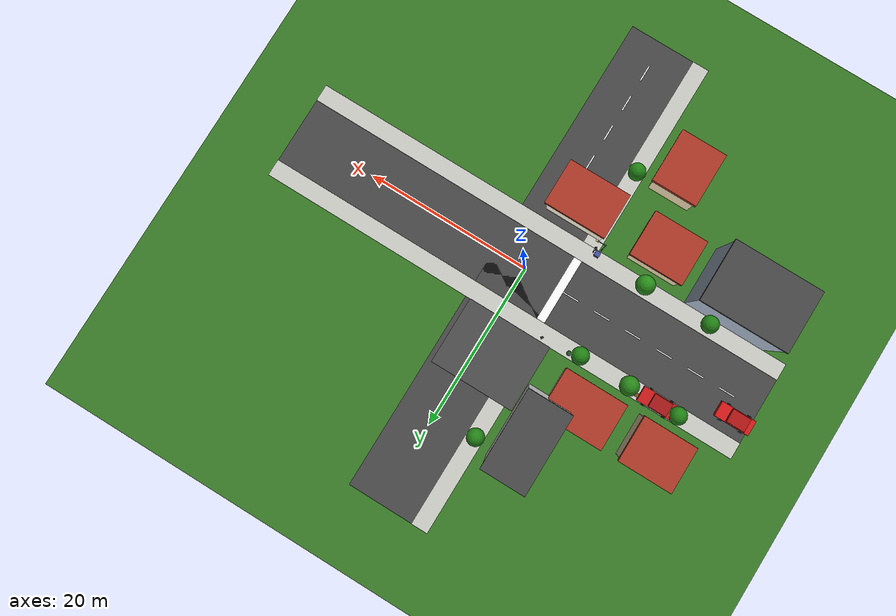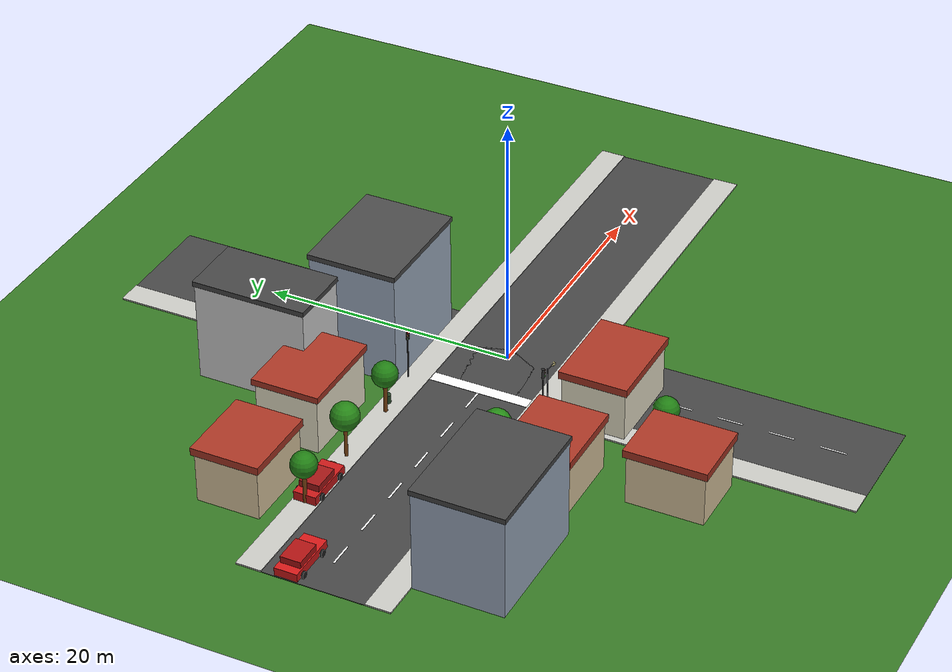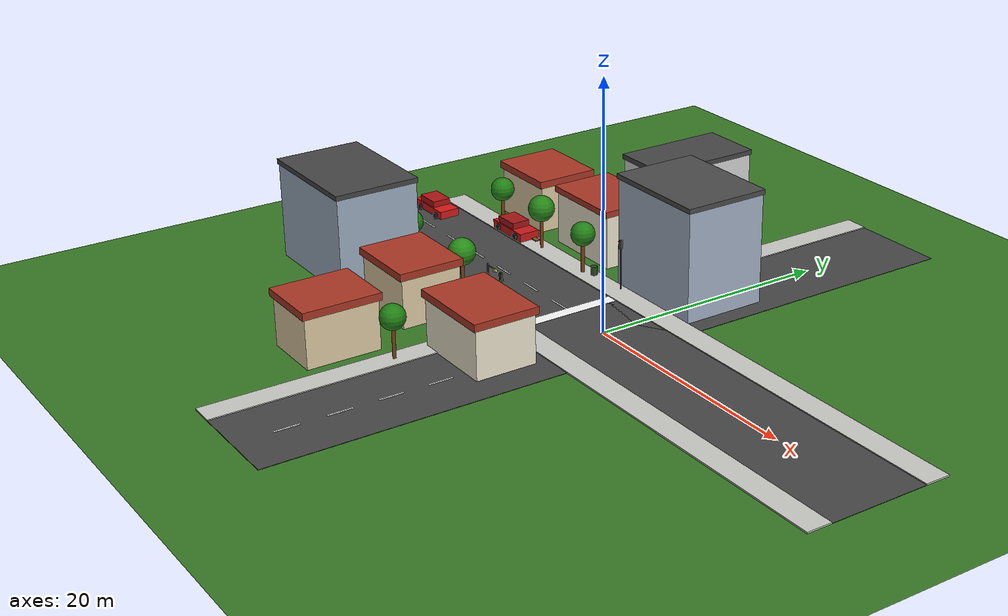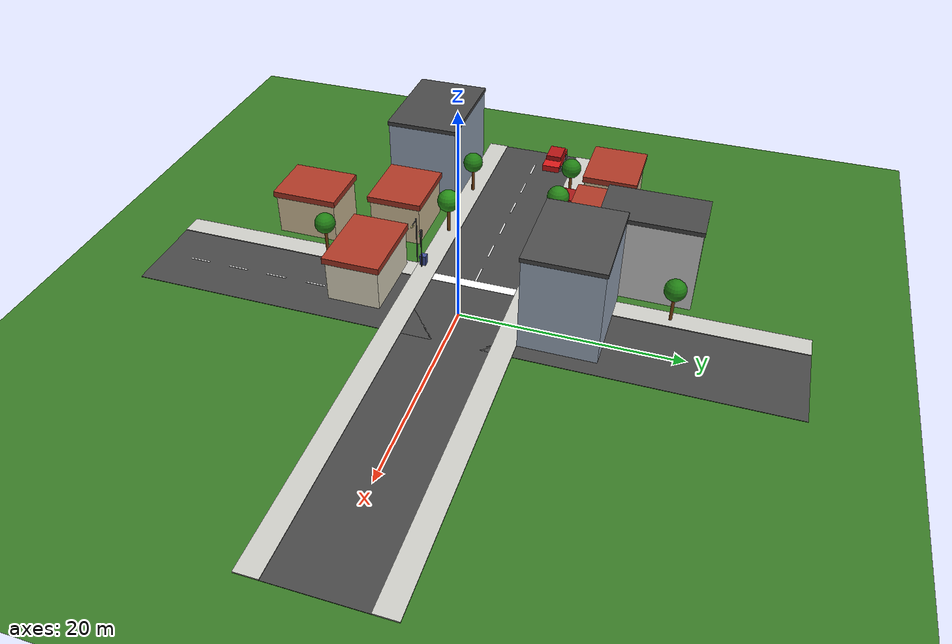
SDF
<sdf version="1.9">
 <world name="smartnav_world">
  <include><uri>https://fuel.gazebosim.org/1.0/OpenRobotics/models/Sun</uri></include>
  <model name="ground_grass">
   <static>true</static>
   <link name="link">
    <collision name="col">
     <geometry><plane><normal>0 0 1</normal><size>120 120</size></plane></geometry>
    </collision>
    <visual name="vis">
     <geometry><plane><normal>0 0 1</normal><size>120 120</size></plane></geometry>
     <material><ambient>0.18 0.40 0.12 1</ambient><diffuse>0.22 0.48 0.15 1</diffuse></material>
    </visual>
   </link>
  </model>
  <model name="road_main">
   <static>true</static>
   <pose>0 0 0.02 0 0 0</pose>
   <link name="link">
    <collision name="col"><geometry><box><size>60 8 0.04</size></box></geometry></collision>
    <visual name="vis">
     <geometry><box><size>60 8 0.04</size></box></geometry>
     <material><ambient>0.22 0.22 0.22 1</ambient><diffuse>0.28 0.28 0.28 1</diffuse></material>
    </visual>
   </link>
  </model>
  <model name="road_cross">
   <static>true</static>
   <pose>0 0 0.02 0 0 0</pose>
   <link name="link">
    <collision name="col"><geometry><box><size>8 60 0.04</size></box></geometry></collision>
    <visual name="vis">
     <geometry><box><size>8 60 0.04</size></box></geometry>
     <material><ambient>0.22 0.22 0.22 1</ambient><diffuse>0.28 0.28 0.28 1</diffuse></material>
    </visual>
   </link>
  </model>
  <model name="sidewalk_north">
   <static>true</static>
   <pose>0 5 0.06 0 0 0</pose>
   <link name="link">
    <collision name="col"><geometry><box><size>60 2 0.12</size></box></geometry></collision>
    <visual name="vis">
     <geometry><box><size>60 2 0.12</size></box></geometry>
     <material><ambient>0.73 0.73 0.71 1</ambient><diffuse>0.80 0.80 0.78 1</diffuse></material>
    </visual>
   </link>
  </model>
  <model name="sidewalk_south">
   <static>true</static>
   <pose>0 -5 0.06 0 0 0</pose>
   <link name="link">
    <collision name="col"><geometry><box><size>60 2 0.12</size></box></geometry></collision>
    <visual name="vis">
     <geometry><box><size>60 2 0.12</size></box></geometry>
     <material><ambient>0.73 0.73 0.71 1</ambient><diffuse>0.80 0.80 0.78 1</diffuse></material>
    </visual>
   </link>
  </model>
  <model name="sidewalk_west_S">
   <static>true</static>
   <pose>-5 -18 0.06 0 0 0</pose>
   <link name="link">
    <collision name="col"><geometry><box><size>2 24 0.12</size></box></geometry></collision>
    <visual name="vis">
     <geometry><box><size>2 24 0.12</size></box></geometry>
     <material><ambient>0.73 0.73 0.71 1</ambient><diffuse>0.80 0.80 0.78 1</diffuse></material>
    </visual>
   </link>
  </model>
  <model name="sidewalk_west_N">
   <static>true</static>
   <pose>-5 18 0.06 0 0 0</pose>
   <link name="link">
    <collision name="col"><geometry><box><size>2 24 0.12</size></box></geometry></collision>
    <visual name="vis">
     <geometry><box><size>2 24 0.12</size></box></geometry>
     <material><ambient>0.73 0.73 0.71 1</ambient><diffuse>0.80 0.80 0.78 1</diffuse></material>
    </visual>
   </link>
  </model>
  <model name="dm_w1">
   <static>true</static>
   <pose>-26 0 0.05 0 0 0</pose>
   <link name="l">
    <visual name="v">
     <geometry><box><size>2 0.15 0.01</size></box></geometry>
     <material><ambient>1 1 1 1</ambient><diffuse>1 1 1 1</diffuse></material>
    </visual>
   </link>
  </model>
  <model name="dm_w2">
   <static>true</static>
   <pose>-22 0 0.05 0 0 0</pose>
   <link name="l">
    <visual name="v">
     <geometry><box><size>2 0.15 0.01</size></box></geometry>
     <material><ambient>1 1 1 1</ambient><diffuse>1 1 1 1</diffuse></material>
    </visual>
   </link>
  </model>
  <model name="dm_w3">
   <static>true</static>
   <pose>-18 0 0.05 0 0 0</pose>
   <link name="l">
    <visual name="v">
     <geometry><box><size>2 0.15 0.01</size></box></geometry>
     <material><ambient>1 1 1 1</ambient><diffuse>1 1 1 1</diffuse></material>
    </visual>
   </link>
  </model>
  <model name="dm_w4">
   <static>true</static>
   <pose>-14 0 0.05 0 0 0</pose>
   <link name="l">
    <visual name="v">
     <geometry><box><size>2 0.15 0.01</size></box></geometry>
     <material><ambient>1 1 1 1</ambient><diffuse>1 1 1 1</diffuse></material>
    </visual>
   </link>
  </model>
  <model name="dm_w5">
   <static>true</static>
   <pose>-10 0 0.05 0 0 0</pose>
   <link name="l">
    <visual name="v">
     <geometry><box><size>2 0.15 0.01</size></box></geometry>
     <material><ambient>1 1 1 1</ambient><diffuse>1 1 1 1</diffuse></material>
    </visual>
   </link>
  </model>
  <model name="dm_w6">
   <static>true</static>
   <pose>-6  0 0.05 0 0 0</pose>
   <link name="l">
    <visual name="v">
     <geometry><box><size>2 0.15 0.01</size></box></geometry>
     <material><ambient>1 1 1 1</ambient><diffuse>1 1 1 1</diffuse></material>
    </visual>
   </link>
  </model>
  <model name="dc_s1">
   <static>true</static>
   <pose>0 -26 0.05 0 0 0</pose>
   <link name="l">
    <visual name="v">
     <geometry><box><size>0.15 2 0.01</size></box></geometry>
     <material><ambient>1 1 1 1</ambient><diffuse>1 1 1 1</diffuse></material>
    </visual>
   </link>
  </model>
  <model name="dc_s2">
   <static>true</static>
   <pose>0 -22 0.05 0 0 0</pose>
   <link name="l">
    <visual name="v">
     <geometry><box><size>0.15 2 0.01</size></box></geometry>
     <material><ambient>1 1 1 1</ambient><diffuse>1 1 1 1</diffuse></material>
    </visual>
   </link>
  </model>
  <model name="dc_s3">
   <static>true</static>
   <pose>0 -18 0.05 0 0 0</pose>
   <link name="l">
    <visual name="v">
     <geometry><box><size>0.15 2 0.01</size></box></geometry>
     <material><ambient>1 1 1 1</ambient><diffuse>1 1 1 1</diffuse></material>
    </visual>
   </link>
  </model>
  <model name="dc_s4">
   <static>true</static>
   <pose>0 -14 0.05 0 0 0</pose>
   <link name="l">
    <visual name="v">
     <geometry><box><size>0.15 2 0.01</size></box></geometry>
     <material><ambient>1 1 1 1</ambient><diffuse>1 1 1 1</diffuse></material>
    </visual>
   </link>
  </model>
  <model name="dc_s5">
   <static>true</static>
   <pose>0 -10 0.05 0 0 0</pose>
   <link name="l">
    <visual name="v">
     <geometry><box><size>0.15 2 0.01</size></box></geometry>
     <material><ambient>1 1 1 1</ambient><diffuse>1 1 1 1</diffuse></material>
    </visual>
   </link>
  </model>
  <model name="crosswalk_west">
   <static>true</static>
   <pose>-4.5  0   0.05 0 0 0</pose>
   <link name="l">
    <visual name="v">
     <geometry><box><size>1 8 0.01</size></box></geometry>
     <material><ambient>0.95 0.95 0.95 1</ambient><diffuse>1 1 1 1</diffuse></material>
    </visual>
   </link>
  </model>
  <model name="house_n1">
   <static>true</static>
   <pose>-22 9.5 0 0 0 0</pose>
   <link name="walls">
    <pose>0 0 2 0 0 0</pose>
    <collision name="col"><geometry><box><size>6 5 4</size></box></geometry></collision>
    <visual name="vis">
     <geometry><box><size>6 5 4</size></box></geometry>
     <material><ambient>0.87 0.79 0.63 1</ambient><diffuse>0.90 0.82 0.66 1</diffuse></material>
    </visual>
   </link>
   <link name="roof">
    <pose>0 0 4.3 0 0 0</pose>
    <visual name="vis">
     <geometry><box><size>6.4 5.4 0.6</size></box></geometry>
     <material><ambient>0.62 0.18 0.12 1</ambient><diffuse>0.68 0.22 0.15 1</diffuse></material>
    </visual>
   </link>
  </model>
  <model name="house_n2">
   <static>true</static>
   <pose>-13 9.5 0 0 0 0</pose>
   <link name="walls">
    <pose>0 0 2.25 0 0 0</pose>
    <collision name="col"><geometry><box><size>7 5 4.5</size></box></geometry></collision>
    <visual name="vis">
     <geometry><box><size>7 5 4.5</size></box></geometry>
     <material><ambient>0.94 0.90 0.80 1</ambient><diffuse>0.96 0.93 0.83 1</diffuse></material>
    </visual>
   </link>
   <link name="roof">
    <pose>0 0 4.75 0 0 0</pose>
    <visual name="vis">
     <geometry><box><size>7.4 5.4 0.5</size></box></geometry>
     <material><ambient>0.62 0.18 0.12 1</ambient><diffuse>0.68 0.22 0.15 1</diffuse></material>
    </visual>
   </link>
  </model>
  <model name="building_n1">
   <static>true</static>
   <pose>-2 9.5 0 0 0 0</pose>
   <link name="walls">
    <pose>0 0 4.5 0 0 0</pose>
    <collision name="col"><geometry><box><size>9 7 9</size></box></geometry></collision>
    <visual name="vis">
     <geometry><box><size>9 7 9</size></box></geometry>
     <material><ambient>0.62 0.68 0.75 1</ambient><diffuse>0.66 0.72 0.80 1</diffuse></material>
    </visual>
   </link>
   <link name="roof">
    <pose>0 0 9.2 0 0 0</pose>
    <visual name="vis">
     <geometry><box><size>9.2 7.2 0.4</size></box></geometry>
     <material><ambient>0.28 0.28 0.28 1</ambient><diffuse>0.30 0.30 0.30 1</diffuse></material>
    </visual>
   </link>
  </model>
  <model name="building_s1">
   <static>true</static>
   <pose>-22 -9.5 0 0 0 0</pose>
   <link name="walls">
    <pose>0 0 4 0 0 0</pose>
    <collision name="col"><geometry><box><size>10 7 8</size></box></geometry></collision>
    <visual name="vis">
     <geometry><box><size>10 7 8</size></box></geometry>
     <material><ambient>0.60 0.66 0.73 1</ambient><diffuse>0.64 0.70 0.78 1</diffuse></material>
    </visual>
   </link>
   <link name="roof">
    <pose>0 0 8.2 0 0 0</pose>
    <visual name="vis">
     <geometry><box><size>10.2 7.2 0.4</size></box></geometry>
     <material><ambient>0.25 0.25 0.25 1</ambient><diffuse>0.28 0.28 0.28 1</diffuse></material>
    </visual>
   </link>
  </model>
  <model name="house_s1">
   <static>true</static>
   <pose>-12 -9.5 0 0 0 0</pose>
   <link name="walls">
    <pose>0 0 2 0 0 0</pose>
    <collision name="col"><geometry><box><size>6 5 4</size></box></geometry></collision>
    <visual name="vis">
     <geometry><box><size>6 5 4</size></box></geometry>
     <material><ambient>0.87 0.79 0.63 1</ambient><diffuse>0.90 0.82 0.66 1</diffuse></material>
    </visual>
   </link>
   <link name="roof">
    <pose>0 0 4.3 0 0 0</pose>
    <visual name="vis">
     <geometry><box><size>6.4 5.4 0.6</size></box></geometry>
     <material><ambient>0.62 0.18 0.12 1</ambient><diffuse>0.68 0.22 0.15 1</diffuse></material>
    </visual>
   </link>
  </model>
  <model name="house_s2">
   <static>true</static>
   <pose>-2 -9.5 0 0 0 0</pose>
   <link name="walls">
    <pose>0 0 2 0 0 0</pose>
    <collision name="col"><geometry><box><size>7 5 4</size></box></geometry></collision>
    <visual name="vis">
     <geometry><box><size>7 5 4</size></box></geometry>
     <material><ambient>0.94 0.90 0.80 1</ambient><diffuse>0.96 0.93 0.83 1</diffuse></material>
    </visual>
   </link>
   <link name="roof">
    <pose>0 0 4.3 0 0 0</pose>
    <visual name="vis">
     <geometry><box><size>7.4 5.4 0.6</size></box></geometry>
     <material><ambient>0.62 0.18 0.12 1</ambient><diffuse>0.68 0.22 0.15 1</diffuse></material>
    </visual>
   </link>
  </model>
  <model name="house_w1">
   <static>true</static>
   <pose>-9.5 -18 0 0 0 0</pose>
   <link name="walls">
    <pose>0 0 2 0 0 0</pose>
    <collision name="col"><geometry><box><size>5 6 4</size></box></geometry></collision>
    <visual name="vis">
     <geometry><box><size>5 6 4</size></box></geometry>
     <material><ambient>0.87 0.79 0.63 1</ambient><diffuse>0.90 0.82 0.66 1</diffuse></material>
    </visual>
   </link>
   <link name="roof">
    <pose>0 0 4.3 0 0 0</pose>
    <visual name="vis">
     <geometry><box><size>5.4 6.4 0.6</size></box></geometry>
     <material><ambient>0.62 0.18 0.12 1</ambient><diffuse>0.68 0.22 0.15 1</diffuse></material>
    </visual>
   </link>
  </model>
  <model name="building_w1">
   <static>true</static>
   <pose>-9.5 15 0 0 0 0</pose>
   <link name="walls">
    <pose>0 0 4 0 0 0</pose>
    <collision name="col"><geometry><box><size>5 9 8</size></box></geometry></collision>
    <visual name="vis">
     <geometry><box><size>5 9 8</size></box></geometry>
     <material><ambient>0.82 0.82 0.82 1</ambient><diffuse>0.86 0.86 0.86 1</diffuse></material>
    </visual>
   </link>
   <link name="roof">
    <pose>0 0 8.2 0 0 0</pose>
    <visual name="vis">
     <geometry><box><size>5.2 9.2 0.4</size></box></geometry>
     <material><ambient>0.25 0.25 0.25 1</ambient><diffuse>0.28 0.28 0.28 1</diffuse></material>
    </visual>
   </link>
  </model>
  <model name="car_1">
   <static>true</static>
   <pose>-20 5.0 0.12 0 0 0</pose>
   <link name="body">
    <pose>0 0 0.35 0 0 0</pose>
    <collision name="col"><geometry><box><size>4.2 1.8 0.7</size></box></geometry></collision>
    <visual name="vis">
     <geometry><box><size>4.2 1.8 0.7</size></box></geometry>
     <material><ambient>0.75 0.08 0.08 1</ambient><diffuse>0.80 0.10 0.10 1</diffuse></material>
    </visual>
   </link>
   <link name="cabin">
    <pose>-0.3 0 0.95 0 0 0</pose>
    <visual name="vis">
     <geometry><box><size>2.2 1.6 0.55</size></box></geometry>
     <material><ambient>0.60 0.07 0.07 1</ambient><diffuse>0.65 0.09 0.09 1</diffuse></material>
    </visual>
   </link>
   <link name="wfl">
    <pose>1.3 0.95 0.28 1.5708 0 0</pose>
    <collision name="col">
     <geometry><cylinder><radius>0.28</radius><length>0.2</length></cylinder></geometry>
    </collision>
    <visual name="vis">
     <geometry><cylinder><radius>0.28</radius><length>0.2</length></cylinder></geometry>
     <material><ambient>0.08 0.08 0.08 1</ambient><diffuse>0.1 0.1 0.1 1</diffuse></material>
    </visual>
   </link>
   <link name="wfr">
    <pose>1.3 -0.95 0.28 1.5708 0 0</pose>
    <collision name="col">
     <geometry><cylinder><radius>0.28</radius><length>0.2</length></cylinder></geometry>
    </collision>
    <visual name="vis">
     <geometry><cylinder><radius>0.28</radius><length>0.2</length></cylinder></geometry>
     <material><ambient>0.08 0.08 0.08 1</ambient><diffuse>0.1 0.1 0.1 1</diffuse></material>
    </visual>
   </link>
   <link name="wrl">
    <pose>-1.3 0.95 0.28 1.5708 0 0</pose>
    <collision name="col">
     <geometry><cylinder><radius>0.28</radius><length>0.2</length></cylinder></geometry>
    </collision>
    <visual name="vis">
     <geometry><cylinder><radius>0.28</radius><length>0.2</length></cylinder></geometry>
     <material><ambient>0.08 0.08 0.08 1</ambient><diffuse>0.1 0.1 0.1 1</diffuse></material>
    </visual>
   </link>
   <link name="wrr">
    <pose>-1.3 -0.95 0.28 1.5708 0 0</pose>
    <collision name="col">
     <geometry><cylinder><radius>0.28</radius><length>0.2</length></cylinder></geometry>
    </collision>
    <visual name="vis">
     <geometry><cylinder><radius>0.28</radius><length>0.2</length></cylinder></geometry>
     <material><ambient>0.08 0.08 0.08 1</ambient><diffuse>0.1 0.1 0.1 1</diffuse></material>
    </visual>
   </link>
  </model>
  <model name="tree_n1">
   <static>true</static>
   <pose>-22 5 0 0 0 0</pose>
   <link name="trunk">
    <pose>0 0 1.2 0 0 0</pose>
    <collision name="col">
     <geometry><cylinder><radius>0.15</radius><length>2.4</length></cylinder></geometry>
    </collision>
    <visual name="vis">
     <geometry><cylinder><radius>0.15</radius><length>2.4</length></cylinder></geometry>
     <material><ambient>0.42 0.22 0.06 1</ambient><diffuse>0.48 0.26 0.07 1</diffuse></material>
    </visual>
   </link>
   <link name="canopy">
    <pose>0 0 3.4 0 0 0</pose>
    <collision name="col"><geometry><sphere><radius>1.0</radius></sphere></geometry></collision>
    <visual name="vis">
     <geometry><sphere><radius>1.0</radius></sphere></geometry>
     <material><ambient>0.10 0.42 0.07 1</ambient><diffuse>0.13 0.50 0.08 1</diffuse></material>
    </visual>
   </link>
  </model>
  <model name="tree_n2">
   <static>true</static>
   <pose>-16 5 0 0 0 0</pose>
   <link name="trunk">
    <pose>0 0 1.25 0 0 0</pose>
    <collision name="col">
     <geometry><cylinder><radius>0.13</radius><length>2.5</length></cylinder></geometry>
    </collision>
    <visual name="vis">
     <geometry><cylinder><radius>0.13</radius><length>2.5</length></cylinder></geometry>
     <material><ambient>0.42 0.22 0.06 1</ambient><diffuse>0.48 0.26 0.07 1</diffuse></material>
    </visual>
   </link>
   <link name="canopy">
    <pose>0 0 3.6 0 0 0</pose>
    <collision name="col"><geometry><sphere><radius>1.1</radius></sphere></geometry></collision>
    <visual name="vis">
     <geometry><sphere><radius>1.1</radius></sphere></geometry>
     <material><ambient>0.12 0.45 0.08 1</ambient><diffuse>0.15 0.52 0.09 1</diffuse></material>
    </visual>
   </link>
  </model>
  <model name="tree_n3">
   <static>true</static>
   <pose>-10 5 0 0 0 0</pose>
   <link name="trunk">
    <pose>0 0 1.2 0 0 0</pose>
    <collision name="col">
     <geometry><cylinder><radius>0.15</radius><length>2.4</length></cylinder></geometry>
    </collision>
    <visual name="vis">
     <geometry><cylinder><radius>0.15</radius><length>2.4</length></cylinder></geometry>
     <material><ambient>0.42 0.22 0.06 1</ambient><diffuse>0.48 0.26 0.07 1</diffuse></material>
    </visual>
   </link>
   <link name="canopy">
    <pose>0 0 3.4 0 0 0</pose>
    <collision name="col"><geometry><sphere><radius>1.0</radius></sphere></geometry></collision>
    <visual name="vis">
     <geometry><sphere><radius>1.0</radius></sphere></geometry>
     <material><ambient>0.10 0.42 0.07 1</ambient><diffuse>0.13 0.50 0.08 1</diffuse></material>
    </visual>
   </link>
  </model>
  <model name="tree_s1">
   <static>true</static>
   <pose>-20 -5 0 0 0 0</pose>
   <link name="trunk">
    <pose>0 0 1.2 0 0 0</pose>
    <collision name="col">
     <geometry><cylinder><radius>0.15</radius><length>2.4</length></cylinder></geometry>
    </collision>
    <visual name="vis">
     <geometry><cylinder><radius>0.15</radius><length>2.4</length></cylinder></geometry>
     <material><ambient>0.42 0.22 0.06 1</ambient><diffuse>0.48 0.26 0.07 1</diffuse></material>
    </visual>
   </link>
   <link name="canopy">
    <pose>0 0 3.4 0 0 0</pose>
    <collision name="col"><geometry><sphere><radius>1.0</radius></sphere></geometry></collision>
    <visual name="vis">
     <geometry><sphere><radius>1.0</radius></sphere></geometry>
     <material><ambient>0.10 0.42 0.07 1</ambient><diffuse>0.13 0.50 0.08 1</diffuse></material>
    </visual>
   </link>
  </model>
  <model name="tree_s2">
   <static>true</static>
   <pose>-12 -5 0 0 0 0</pose>
   <link name="trunk">
    <pose>0 0 1.3 0 0 0</pose>
    <collision name="col">
     <geometry><cylinder><radius>0.14</radius><length>2.6</length></cylinder></geometry>
    </collision>
    <visual name="vis">
     <geometry><cylinder><radius>0.14</radius><length>2.6</length></cylinder></geometry>
     <material><ambient>0.42 0.22 0.06 1</ambient><diffuse>0.48 0.26 0.07 1</diffuse></material>
    </visual>
   </link>
   <link name="canopy">
    <pose>0 0 3.6 0 0 0</pose>
    <collision name="col"><geometry><sphere><radius>1.1</radius></sphere></geometry></collision>
    <visual name="vis">
     <geometry><sphere><radius>1.1</radius></sphere></geometry>
     <material><ambient>0.12 0.48 0.08 1</ambient><diffuse>0.15 0.55 0.09 1</diffuse></material>
    </visual>
   </link>
  </model>
  <model name="tree_c2">
   <static>true</static>
   <pose>-5 -15 0 0 0 0</pose>
   <link name="trunk">
    <pose>0 0 1.2 0 0 0</pose>
    <collision name="col">
     <geometry><cylinder><radius>0.14</radius><length>2.4</length></cylinder></geometry>
    </collision>
    <visual name="vis">
     <geometry><cylinder><radius>0.14</radius><length>2.4</length></cylinder></geometry>
     <material><ambient>0.42 0.22 0.06 1</ambient><diffuse>0.48 0.26 0.07 1</diffuse></material>
    </visual>
   </link>
   <link name="canopy">
    <pose>0 0 3.4 0 0 0</pose>
    <collision name="col"><geometry><sphere><radius>1.0</radius></sphere></geometry></collision>
    <visual name="vis">
     <geometry><sphere><radius>1.0</radius></sphere></geometry>
     <material><ambient>0.10 0.42 0.07 1</ambient><diffuse>0.13 0.50 0.08 1</diffuse></material>
    </visual>
   </link>
  </model>
  <model name="tree_c4">
   <static>true</static>
   <pose>-5 18 0 0 0 0</pose>
   <link name="trunk">
    <pose>0 0 1.2 0 0 0</pose>
    <collision name="col">
     <geometry><cylinder><radius>0.14</radius><length>2.4</length></cylinder></geometry>
    </collision>
    <visual name="vis">
     <geometry><cylinder><radius>0.14</radius><length>2.4</length></cylinder></geometry>
     <material><ambient>0.42 0.22 0.06 1</ambient><diffuse>0.48 0.26 0.07 1</diffuse></material>
    </visual>
   </link>
   <link name="canopy">
    <pose>0 0 3.4 0 0 0</pose>
    <collision name="col"><geometry><sphere><radius>1.0</radius></sphere></geometry></collision>
    <visual name="vis">
     <geometry><sphere><radius>1.0</radius></sphere></geometry>
     <material><ambient>0.10 0.42 0.07 1</ambient><diffuse>0.13 0.50 0.08 1</diffuse></material>
    </visual>
   </link>
  </model>
  <model name="lamp_NW">
   <static>true</static>
   <pose>-6.2 6.2 0 0 0 0</pose>
   <link name="pole">
    <visual name="pole">
     <pose>0 0 2.5 0 0 0</pose>
     <geometry><cylinder><radius>0.055</radius><length>5.0</length></cylinder></geometry>
     <material><ambient>0.40 0.40 0.42 1</ambient><diffuse>0.45 0.45 0.47 1</diffuse></material>
    </visual>
    <visual name="arm">
     <pose>0.5 0 4.85 0 1.5708 0</pose>
     <geometry><cylinder><radius>0.035</radius><length>1.0</length></cylinder></geometry>
     <material><ambient>0.40 0.40 0.42 1</ambient><diffuse>0.45 0.45 0.47 1</diffuse></material>
    </visual>
    <visual name="head">
     <pose>1.0 0 4.75 0 0 0</pose>
     <geometry><box><size>0.38 0.18 0.14</size></box></geometry>
     <material>
      <ambient>0.95 0.90 0.55 1</ambient>
      <diffuse>1.0 0.95 0.65 1</diffuse>
      <emissive>0.5 0.45 0.15 1</emissive>
     </material>
    </visual>
    <collision name="col">
     <pose>0 0 2.5 0 0 0</pose>
     <geometry><cylinder><radius>0.055</radius><length>5.0</length></cylinder></geometry>
    </collision>
   </link>
  </model>
  <model name="lamp_SW">
   <static>true</static>
   <pose>-6.2 -6.2 0 0 0 0</pose>
   <link name="pole">
    <visual name="pole">
     <pose>0 0 2.5 0 0 0</pose>
     <geometry><cylinder><radius>0.055</radius><length>5.0</length></cylinder></geometry>
     <material><ambient>0.40 0.40 0.42 1</ambient><diffuse>0.45 0.45 0.47 1</diffuse></material>
    </visual>
    <visual name="arm">
     <pose>0.5 0 4.85 0 1.5708 0</pose>
     <geometry><cylinder><radius>0.035</radius><length>1.0</length></cylinder></geometry>
     <material><ambient>0.40 0.40 0.42 1</ambient><diffuse>0.45 0.45 0.47 1</diffuse></material>
    </visual>
    <visual name="head">
     <pose>1.0 0 4.75 0 0 0</pose>
     <geometry><box><size>0.38 0.18 0.14</size></box></geometry>
     <material>
      <ambient>0.95 0.90 0.55 1</ambient>
      <diffuse>1.0 0.95 0.65 1</diffuse>
      <emissive>0.5 0.45 0.15 1</emissive>
     </material>
    </visual>
    <collision name="col">
     <pose>0 0 2.5 0 0 0</pose>
     <geometry><cylinder><radius>0.055</radius><length>5.0</length></cylinder></geometry>
    </collision>
   </link>
  </model>
  <model name="tl_NW">
   <static>true</static>
   <pose>-5.5 5.5 0 0 0 0.7854</pose>
   <link name="link">
    <visual name="pole">
     <pose>0 0 1.9 0 0 0</pose>
     <geometry><cylinder><radius>0.05</radius><length>3.8</length></cylinder></geometry>
     <material><ambient>0.28 0.28 0.28 1</ambient><diffuse>0.32 0.32 0.32 1</diffuse></material>
    </visual>
    <visual name="box">
     <pose>0 0 3.9 0 0 0</pose>
     <geometry><box><size>0.24 0.24 0.72</size></box></geometry>
     <material><ambient>0.12 0.12 0.12 1</ambient><diffuse>0.18 0.18 0.18 1</diffuse></material>
    </visual>
    <visual name="red">
     <pose>-0.13 0 4.15 0 1.5708 0</pose>
     <geometry><sphere><radius>0.068</radius></sphere></geometry>
     <material>
      <ambient>0.90 0.05 0.05 1</ambient>
      <diffuse>1.0 0.08 0.08 1</diffuse>
      <emissive>0.80 0 0 1</emissive>
     </material>
    </visual>
    <visual name="orange">
     <pose>-0.13 0 3.90 0 1.5708 0</pose>
     <geometry><sphere><radius>0.068</radius></sphere></geometry>
     <material><ambient>0.25 0.12 0.00 1</ambient><diffuse>0.30 0.14 0.00 1</diffuse></material>
    </visual>
    <visual name="green">
     <pose>-0.13 0 3.65 0 1.5708 0</pose>
     <geometry><sphere><radius>0.068</radius></sphere></geometry>
     <material><ambient>0.05 0.22 0.05 1</ambient><diffuse>0.08 0.28 0.08 1</diffuse></material>
    </visual>
    <collision name="col">
     <pose>0 0 1.9 0 0 0</pose>
     <geometry><cylinder><radius>0.05</radius><length>3.8</length></cylinder></geometry>
    </collision>
   </link>
  </model>
  <model name="tl_SW">
   <static>true</static>
   <pose>-5.5 -5.5 0 0 0 2.3562</pose>
   <link name="link">
    <visual name="pole">
     <pose>0 0 1.9 0 0 0</pose>
     <geometry><cylinder><radius>0.05</radius><length>3.8</length></cylinder></geometry>
     <material><ambient>0.28 0.28 0.28 1</ambient><diffuse>0.32 0.32 0.32 1</diffuse></material>
    </visual>
    <visual name="box">
     <pose>0 0 3.9 0 0 0</pose>
     <geometry><box><size>0.24 0.24 0.72</size></box></geometry>
     <material><ambient>0.12 0.12 0.12 1</ambient><diffuse>0.18 0.18 0.18 1</diffuse></material>
    </visual>
    <visual name="red">
     <pose>-0.13 0 4.15 0 1.5708 0</pose>
     <geometry><sphere><radius>0.068</radius></sphere></geometry>
     <material><ambient>0.25 0.05 0.05 1</ambient><diffuse>0.30 0.06 0.06 1</diffuse></material>
    </visual>
    <visual name="orange">
     <pose>-0.13 0 3.90 0 1.5708 0</pose>
     <geometry><sphere><radius>0.068</radius></sphere></geometry>
     <material><ambient>0.25 0.12 0.00 1</ambient><diffuse>0.30 0.14 0.00 1</diffuse></material>
    </visual>
    <visual name="green">
     <pose>-0.13 0 3.65 0 1.5708 0</pose>
     <geometry><sphere><radius>0.068</radius></sphere></geometry>
     <material>
      <ambient>0.05 0.85 0.05 1</ambient>
      <diffuse>0.08 0.95 0.08 1</diffuse>
      <emissive>0 0.65 0 1</emissive>
     </material>
    </visual>
    <collision name="col">
     <pose>0 0 1.9 0 0 0</pose>
     <geometry><cylinder><radius>0.05</radius><length>3.8</length></cylinder></geometry>
    </collision>
   </link>
  </model>
  <model name="poubelle">
   <static>true</static>
   <pose>-9 5.4 0.45 0 0 0</pose>
   <link name="link">
    <collision name="col">
     <geometry><cylinder><radius>0.28</radius><length>0.75</length></cylinder></geometry>
    </collision>
    <visual name="vis">
     <geometry><cylinder><radius>0.28</radius><length>0.75</length></cylinder></geometry>
     <material><ambient>0.12 0.22 0.12 1</ambient><diffuse>0.15 0.28 0.15 1</diffuse></material>
    </visual>
   </link>
  </model>
  <model name="bench_1">
   <static>true</static>
   <pose>-18 5.4 0.22 0 0 0</pose>
   <link name="link">
    <visual name="seat">
     <geometry><box><size>1.6 0.45 0.08</size></box></geometry>
     <material><ambient>0.45 0.28 0.12 1</ambient><diffuse>0.52 0.32 0.14 1</diffuse></material>
    </visual>
    <visual name="back">
     <pose>-0.7 0 0.30 0 -0.35 0</pose>
     <geometry><box><size>0.08 0.45 0.60</size></box></geometry>
     <material><ambient>0.45 0.28 0.12 1</ambient><diffuse>0.52 0.32 0.14 1</diffuse></material>
    </visual>
    <collision name="col"><geometry><box><size>1.6 0.45 0.70</size></box></geometry></collision>
   </link>
  </model>
  <model name="kiosk_1">
   <static>true</static>
   <pose>-6 -5.5 0.55 0 0 0</pose>
   <link name="link">
    <visual name="body">
     <geometry><box><size>0.60 0.60 1.10</size></box></geometry>
     <material><ambient>0.22 0.28 0.55 1</ambient><diffuse>0.26 0.32 0.62 1</diffuse></material>
    </visual>
    <visual name="screen">
     <pose>-0.31 0 0.15 0 0 0</pose>
     <geometry><box><size>0.02 0.35 0.45</size></box></geometry>
     <material>
      <ambient>0.1 0.6 0.9 1</ambient>
      <diffuse>0.15 0.70 0.95 1</diffuse>
      <emissive>0.05 0.35 0.55 1</emissive>
     </material>
    </visual>
    <collision name="col"><geometry><box><size>0.60 0.60 1.10</size></box></geometry></collision>
   </link>
  </model>
  <model name="moving_car_A">
   <pose>-28 2 0.54 0 0 0</pose>
   <link name="chassis">
    <inertial>
     <mass>1200</mass>
     <inertia><ixx>400</ixx><ixy>0</ixy><ixz>0</ixz><iyy>1800</iyy><iyz>0</iyz><izz>1800</izz></inertia>
    </inertial>
    <visual name="body">
     <geometry><box><size>4.2 1.8 0.65</size></box></geometry>
     <material>
      <ambient>0.80 0.08 0.08 1</ambient>
      <diffuse>0.85 0.10 0.10 1</diffuse>
      <specular>0.3 0.1 0.1 1</specular>
     </material>
    </visual>
    <visual name="cabin">
     <pose>-0.3 0 0.58 0 0 0</pose>
     <geometry><box><size>2.2 1.6 0.52</size></box></geometry>
     <material><ambient>0.65 0.06 0.06 1</ambient><diffuse>0.70 0.08 0.08 1</diffuse></material>
    </visual>
    <visual name="wfl">
     <pose>1.3  0.95 -0.22 1.5708 0 0</pose>
     <geometry><cylinder><radius>0.28</radius><length>0.20</length></cylinder></geometry>
     <material><ambient>0.08 0.08 0.08 1</ambient><diffuse>0.12 0.12 0.12 1</diffuse></material>
    </visual>
    <visual name="wfr">
     <pose>1.3 -0.95 -0.22 1.5708 0 0</pose>
     <geometry><cylinder><radius>0.28</radius><length>0.20</length></cylinder></geometry>
     <material><ambient>0.08 0.08 0.08 1</ambient><diffuse>0.12 0.12 0.12 1</diffuse></material>
    </visual>
    <visual name="wrl">
     <pose>-1.3  0.95 -0.22 1.5708 0 0</pose>
     <geometry><cylinder><radius>0.28</radius><length>0.20</length></cylinder></geometry>
     <material><ambient>0.08 0.08 0.08 1</ambient><diffuse>0.12 0.12 0.12 1</diffuse></material>
    </visual>
    <visual name="wrr">
     <pose>-1.3 -0.95 -0.22 1.5708 0 0</pose>
     <geometry><cylinder><radius>0.28</radius><length>0.20</length></cylinder></geometry>
     <material><ambient>0.08 0.08 0.08 1</ambient><diffuse>0.12 0.12 0.12 1</diffuse></material>
    </visual>
    <collision name="col"><geometry><box><size>4.2 1.8 1.0</size></box></geometry></collision>
   </link>
   <plugin filename="gz-sim-velocity-control-system" name="gz::sim::systems::VelocityControl">
    <initial_linear>7.0 0 0</initial_linear>
    <initial_angular>0 0 0</initial_angular>
   </plugin>
  </model>
 </world>
</sdf>
